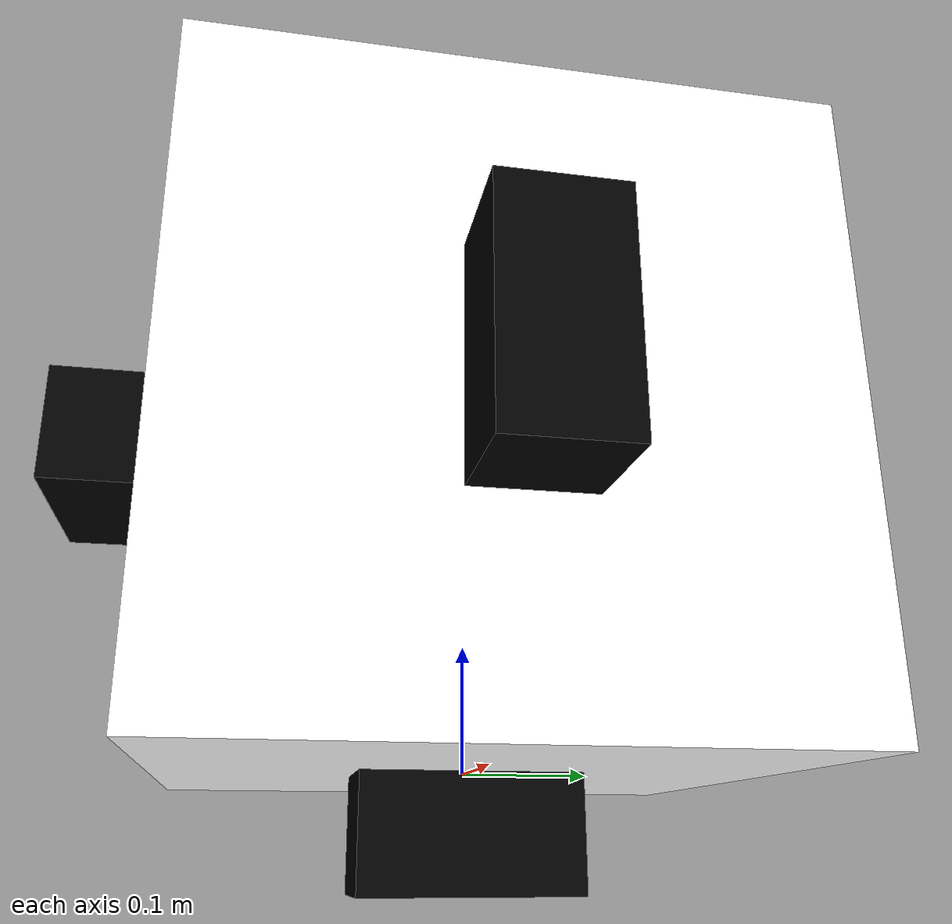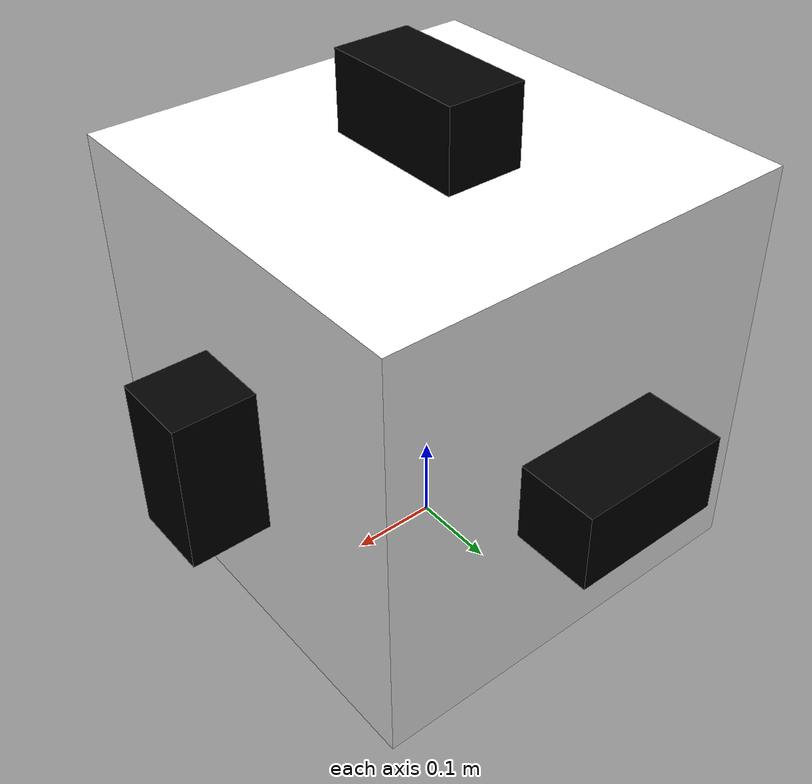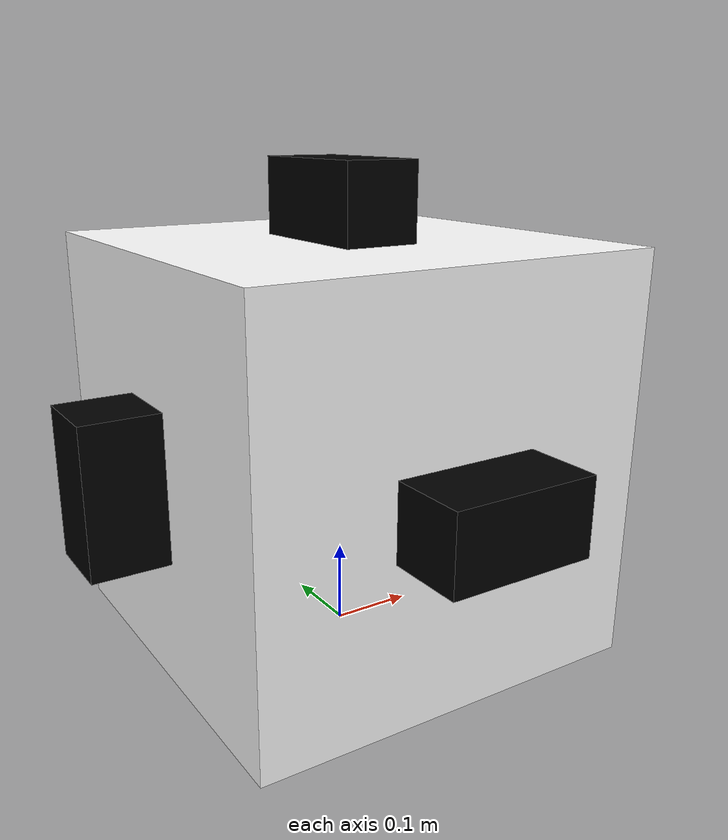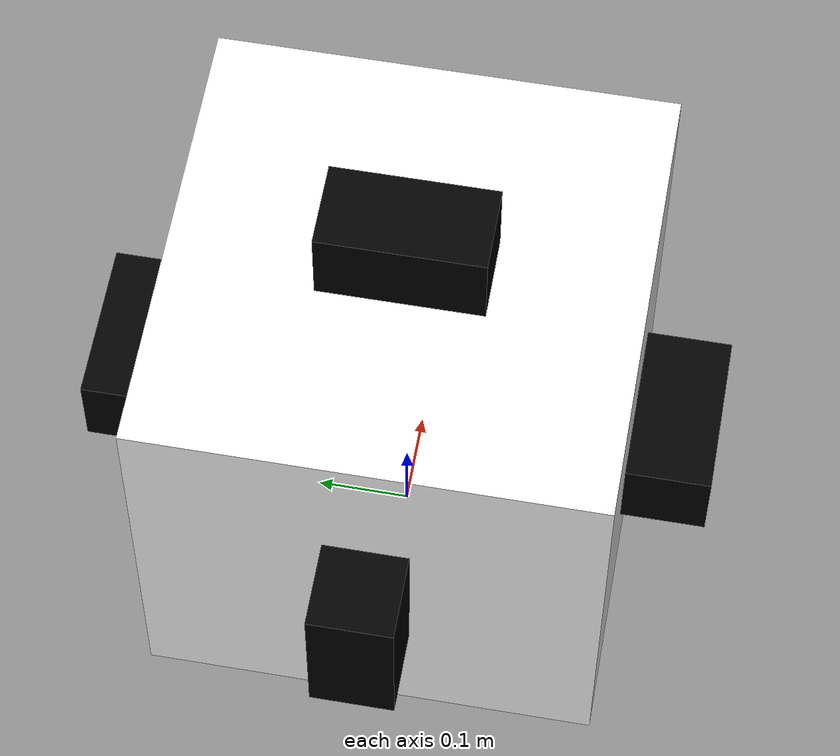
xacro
<?xml version="1.0"?>
<robot xmlns:xacro="http://www.ros.org/wiki/xacro" name ="euclid">

    <gazebo>
        <plugin name="gazebo_ros_control" filename="libgazebo_ros_control.so">
            <robotNamespace>euclid</robotNamespace>
        </plugin>
    </gazebo>

    <material name="white">
        <color rgba="1 1 1 1"/>
    </material>

    <xacro:include filename="$(find euclid_core)/urdf/euclid_thruster.urdf.xacro"/>
    <xacro:include filename="$(find euclid_core)/urdf/euclid_default.xacro"/>

    <xacro:arg name="debug" default="0"/>

    <!-- Vehicle's namespace -->
    <xacro:arg name="namespace" default="euclid"/>

    <xacro:property name="PI" value="3.1415926535897931" />
    <!-- Dimensions for robot body -->
    <xacro:property name="euclid_length" value="0.483"/>
    <xacro:property name="euclid_width" value="0.483"/>
    <xacro:property name="euclid_height" value="0.483"/>
    <xacro:property name="euclid_mass" value="5"/>  <!--supposed to be 22.68-->

    <xacro:property name="thruster_x_property" value="0.2415"/>
    <xacro:property name="thruster_y_property" value="0.2415"/>
    <xacro:property name="thruster_z_property" value="0.2415"/>
    <xacro:property name="thruster_t" value="0.0889"/>

    <link name="base_link">
        <inertial>
            <mass value="1" />
            <origin xyz="0 0 0" rpy="0 0 0"/>
            <inertia ixx="0" ixy="0" ixz="0"
                    iyy="0" iyz="0"
                    izz="0" />
        </inertial>
    </link>

    <link name="chassie">
        <visual>
            <origin xyz="0 0 0.2415" rpy="0 0 0"/>
            <geometry>
                <box size="${euclid_length} ${euclid_width} ${euclid_height}"/>
            </geometry>
            <material name="white"/>
        </visual>
            <collision>
            <origin xyz="0 0 0.2415" rpy="0 0 0"/>
            <geometry>
                <box size="${euclid_length} ${euclid_width} ${euclid_height}"/>
            </geometry>
        </collision>
        <inertial>
        <mass value="${euclid_mass}" />
        <origin xyz="0 0 0" rpy="0 0 0"/>
        <inertia ixx="1" ixy="0" ixz="0"
                 iyy="1" iyz="0" izz="1"/>
        </inertial>

    </link>

    <gazebo reference="chassie">
        <selfCollide>false</selfCollide>
    </gazebo>

    <joint name="reality_glue" type="fixed">
        <parent link="base_link"/>
        <child link="chassie"/>
    </joint>

    <xacro:euclid_thruster prefix="thruster1" parent="chassie" number ="1">
        <origin xyz="0 0 -${thruster_t/2}" rpy="-${PI/2} 0 0"/>
        <inertia ixx="0" ixy="0" ixz="0" iyy="0" iyz="0" izz="0" />
    </xacro:euclid_thruster>

     <xacro:euclid_thruster prefix="thruster2" parent="chassie" number ="2">
        <origin xyz="0 0 ${2*thruster_z_property+thruster_t/2}" rpy="${PI/2} 0 0"/>
        <inertia ixx="0" ixy="0" ixz="0" iyy="0" iyz="0" izz="0" />
    </xacro:euclid_thruster>

    <xacro:euclid_thruster prefix="thruster3" parent="chassie" number ="2">
        <origin xyz="0 ${thruster_y_property+thruster_t/2} ${thruster_z_property}" rpy="0 ${PI/2} 0"/>
        <inertia ixx="0" ixy="0" ixz="0" iyy="0" iyz="0" izz="0" />
    </xacro:euclid_thruster>

     <xacro:euclid_thruster prefix="thruster4" parent="chassie" number ="2">
        <origin xyz="${thruster_x_property+thruster_t/2} 0 ${thruster_z_property}" rpy="0 0 ${PI/2}"/>
        <inertia ixx="0" ixy="0" ixz="0" iyy="0" iyz="0" izz="0" />
    </xacro:euclid_thruster>

     <xacro:euclid_thruster prefix="thruster5" parent="chassie" number ="2">
        <origin xyz="0 -${thruster_y_property+thruster_t/2} ${thruster_z_property}" rpy="0 -${PI/2} 0"/>
        <inertia ixx="0" ixy="0" ixz="0" iyy="0" iyz="0" izz="0" />
    </xacro:euclid_thruster>

    <xacro:euclid_thruster prefix="thruster6" parent="chassie" number ="2">
        <origin xyz="-${thruster_x_property+thruster_t/2} 0 ${thruster_z_property}" rpy="0 0 ${PI/2}"/>
        <inertia ixx="0" ixy="0" ixz="0" iyy="0" iyz="0" izz="0" />
    </xacro:euclid_thruster>

    <xacro:include filename="euclid_colors_gazebo.xacro" />

                <!--Weird shit-->
    <xacro:dummy_link name="ned_link" />

    <joint name="ned_joint" type="revolute">
        <!-- This is revolute and not static since gazebo would remove ned_link -->
        <origin xyz="0 0 0" rpy="${pi} 0 0"/>
        <parent link="base_link"/>
        <child link="ned_link"/>
        <limit effort="0" lower="0" upper="0" velocity="0"/>
    </joint>

    <gazebo>
      <plugin name="euclid_hydrodynamic_plugin" filename="libunderwater_object_ros_plugin.so">
        <!-- Fluid density to be used in the computation of buoyancy forces
        for all links specified below -->
        <fluid_density>1000</fluid_density>

        <!-- Name of the current velocity topic -->
        <flow_velocity_topic>hydrodynamics/current_velocity</flow_velocity_topic>

        <debug>0</debug>

        <!-- List of hydrodynamic models this robot's links -->
        <link name="chassie">
          <!-- This flag will make the link neutrally buoyant -->
          <neutrally_buoyant>0</neutrally_buoyant>

          <!-- Link's volume -->
          <volume>${euclid_length}*${euclid_width}*${euclid_height}</volume>

          <!-- Link's bounding box, it is used to recalculate the immersed
          volume when close to the surface.
          This is a workaround the invalid bounding box given by Gazebo-->
          <box>
            <width>1000</width>
            <length>1000</length>
            <height>1000</height>
          </box>

          <!-- Center of buoyancy -->
          <center_of_buoyancy>0 0 0</center_of_buoyancy>

          <!-- Fossen's equation of motion -->
          <hydrodynamic_model>
            <type>fossen</type>
            <added_mass>
              0 0 0 0 0 0
              0 0 0 0 0 0
              0 0 0 0 0 0
              0 0 0 0 0 0
              0 0 0 0 0 0
              0 0 0 0 0 0
            </added_mass>
            <!--
            The linear damping coefficients can be provided as a diagonal (6 elements)
            or a full matrix (36 coefficients), like the added-mass coefficients above
            -->
            <linear_damping>
              0 0 0 0 0 0
            </linear_damping>
          </hydrodynamic_model>

        </link>
      </plugin>
    </gazebo>

    <!-- Joint state publisher plugin -->
    <gazebo>
        <plugin name="joint_state_publisher" filename="libjoint_state_publisher.so">
        <robotNamespace>$(arg namespace)</robotNamespace>
        <updateRate>50</updateRate>
        </plugin>
    </gazebo>

    <gazebo>
		<plugin name="imu_plugin" filename="libgazebo_ros_imu.so">
			<alwaysOn>true</alwaysOn>
			<bodyName>thruster1</bodyName>
			<topicName>euclid_imu</topicName>
			<serviceName>imu_service</serviceName>
			<gaussianNoise>0.0</gaussianNoise>
			<updateRate>0</updateRate>
			<imu>
				<noise>
					<type>gaussian</type>
					<rate>
						<mean>0.0</mean>
						<stddev>2e-4</stddev>
						<bias_mean>0.0000075</bias_mean>
						<bias_stddev>0.0000008</bias_stddev>
					</rate>
					<accel>
						<mean>0.0</mean>
						<stddev>1.7e-2</stddev>
						<bias_mean>0.1</bias_mean>
						<bias_stddev>0.001</bias_stddev>
					</accel>
				</noise>
			</imu>
		</plugin>
	</gazebo>

</robot>

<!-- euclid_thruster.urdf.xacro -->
<robot xmlns:xacro="http://www.ros.org/wiki/xacro" name ="euclid_thruster">

    <xacro:macro name="euclid_thruster" params=" prefix parent number *origin *inertia">

        <material name="${prefix}_black">
            <color rgba="0 0 0 1"/>
        </material>

        <!-- Dimensions for robot body -->
        <xacro:property name="thruster_length" value="0.1715"/>
        <xacro:property name="thruster_width" value="0.0889"/>
        <xacro:property name="thruster_height" value="0.0889"/>
        <xacro:property name="thruster_mass" value="0.7705"/>
        <xacro:property name="propeller_rad" value="0.095"/>
        <xacro:property name="propeller_length" value="0.05725"/>

        <link name="${prefix}">
            <visual>
                <origin xyz="0 0 0" rpy="0 0 0"/>
                <geometry>
                    <box size="${thruster_width} ${thruster_height} ${thruster_length} "/>
                </geometry>
                <material name="${prefix}_black"/>
            </visual>

            <collision>
                <origin xyz="0 0 0" rpy="0 0 0"/>
                <geometry>
                    <box size="${thruster_width} ${thruster_height} ${thruster_length} "/>
                </geometry>
            </collision>

            <inertial>
                <mass value="${thruster_mass}" />
                <origin xyz="0 0 0" rpy="0 0 0"/>
                <inertia ixx="0.00790321" ixy="0" ixz="0"
                         iyx="0" iyy="0.00790321" iyz="0.0" izz="0.1580642"/>
            </inertial>
        </link>

        <joint name="${prefix}_to_chassie" type="continuous">
            <xacro:insert_block name="origin" />
            <axis xyz="0 0 1" />
            <parent link="chassie" />
            <child link="${prefix}" />
        </joint>

        <gazebo>
             <!-- Thruster ROS plugin -->
            <robotNamespace>euclid</robotNamespace>
            <plugin name="${prefix}_model" filename="libuuv_thruster_ros_plugin.so">
                <!-- Name of the thruster link -->
                <linkName>${prefix}</linkName>

                <!-- Name of the joint between thruster and vehicle base link -->
                <jointName>${prefix}_to_chassie</jointName>

                <!-- Gain of the input command signal -->
                <gain>1</gain>

                <!-- Maximum allowed input value for the input signal for thruster unit -->
                <clampMax>0</clampMax>

                <!-- Minimum allowed value for the input signal for thruster unit -->
                <clampMin>0</clampMin>

                <!-- Minimum and maximum thrust force output allowed -->
                <thrustMin>0</thrustMin>
                <thrustMax>0</thrustMax>

                <!--
                Value from 0 to 1 to set the efficiency of the output thrust force
                Default value is 1.0
                -->
                <thrust_efficiency>1</thrust_efficiency>

                <propeller_efficiency>1</propeller_efficiency>

                <dynamics>
                    <type>Bessa</type>
                    <Jmsp>Jmsp</Jmsp>
                    <Kv1>Kv1</Kv1>
                    <Kv2>Kv2</Kv2>
                    <Kt>Kt</Kt>
                    <Rm>Rm</Rm>
                </dynamics>

                <conversion>
                    <type>LinearInterp</type>
                    <inputValues>0 1 2 3 (replace the input rotor angular velocity values)</inputValues>
                    <outputValues>0 1 2 3 (replace the output thrust force output)</outputValues>
                </conversion>
            </plugin>
        </gazebo>

    </xacro:macro>
</robot>

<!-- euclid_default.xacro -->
<robot name="euclid" xmlns:xacro="http://www.ros.org/wiki/xacro" >
  <xacro:macro name="dummy_link" params="name">
    <link name="ned_link">
            <inertial>
                <mass value="0" />
                <origin xyz="0 0 0" rpy="0 0 0"/>
                <inertia ixx="0.00000" ixy="0.0" ixz="0.0"
                    iyy="0.0" iyz="0.0"
                    izz="0.0"/>
            </inertial>
    </link>
  </xacro:macro>
</robot>
